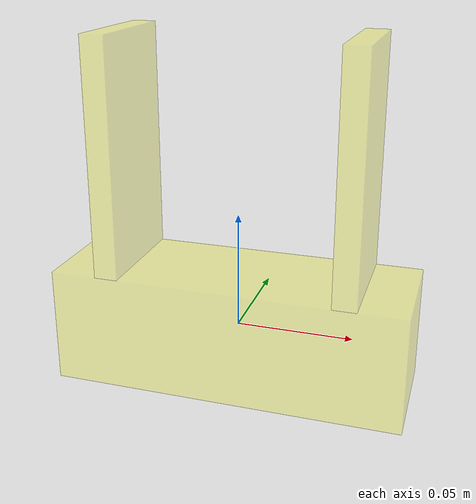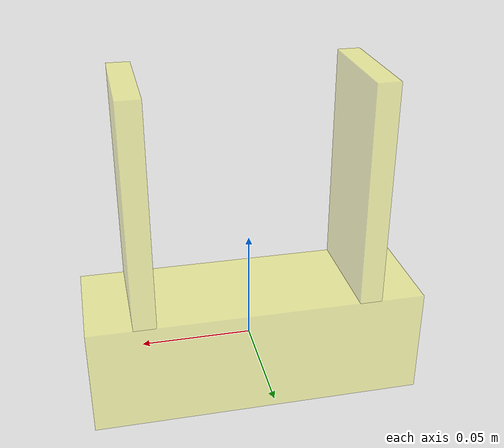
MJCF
<mujoco model="gripper">
  <default>
    <default class="/"/>
  </default>
  <worldbody>
    <body name="base">
      <geom name="base" class="/" type="box" size="0.074999999999999997 0.025000000000000001 0.025000000000000001" rgba="1 1 0 0.29999999999999999" pos="0 0 0"/>
      <body name="finger_left">
        <geom name="finger_left" class="/" type="box" size="0.050000000000000003 0.025000000000000001 0.0050000000000000001" rgba="1 1 0 0.29999999999999999" pos="0.049999999999999996 0 0.075000000000000011" quat="1 0 -1 0"/>
        <joint name="joint_left" class="/" type="slide" pos="0 0 0.025000000000000001" axis="1 0 0" limited="true" range="-0.044999999999999998 0" damping="1.0"/>
      </body>
      <body name="finger_right">
        <geom name="finger_right" class="/" type="box" size="0.050000000000000003 0.025000000000000001 0.0050000000000000001" rgba="1 1 0 0.29999999999999999" pos="-0.049999999999999996 0 0.075000000000000011" quat="1 0 1 0"/>
        <joint name="joint_right" class="/" type="slide" pos="0 0 0.025000000000000001" axis="1 0 0" limited="true" range="0 0.044999999999999998" damping="1.0"/>
      </body>
    </body>
  </worldbody>
</mujoco>
